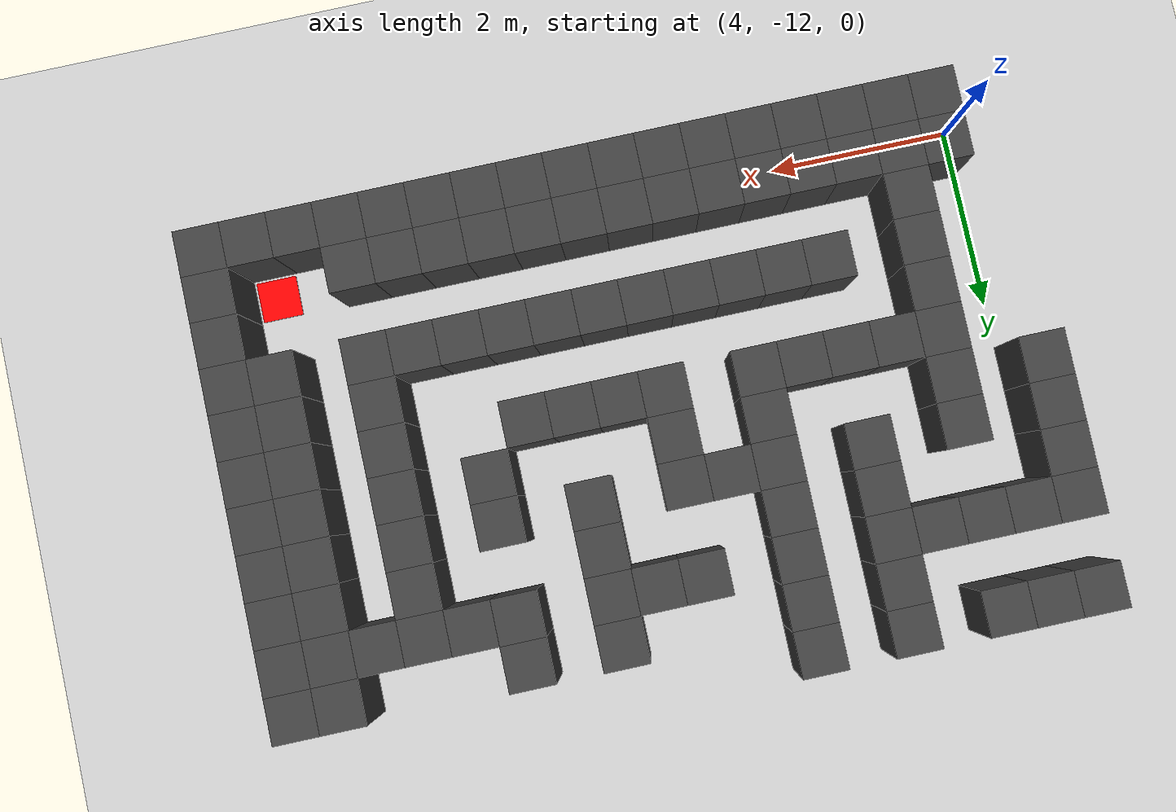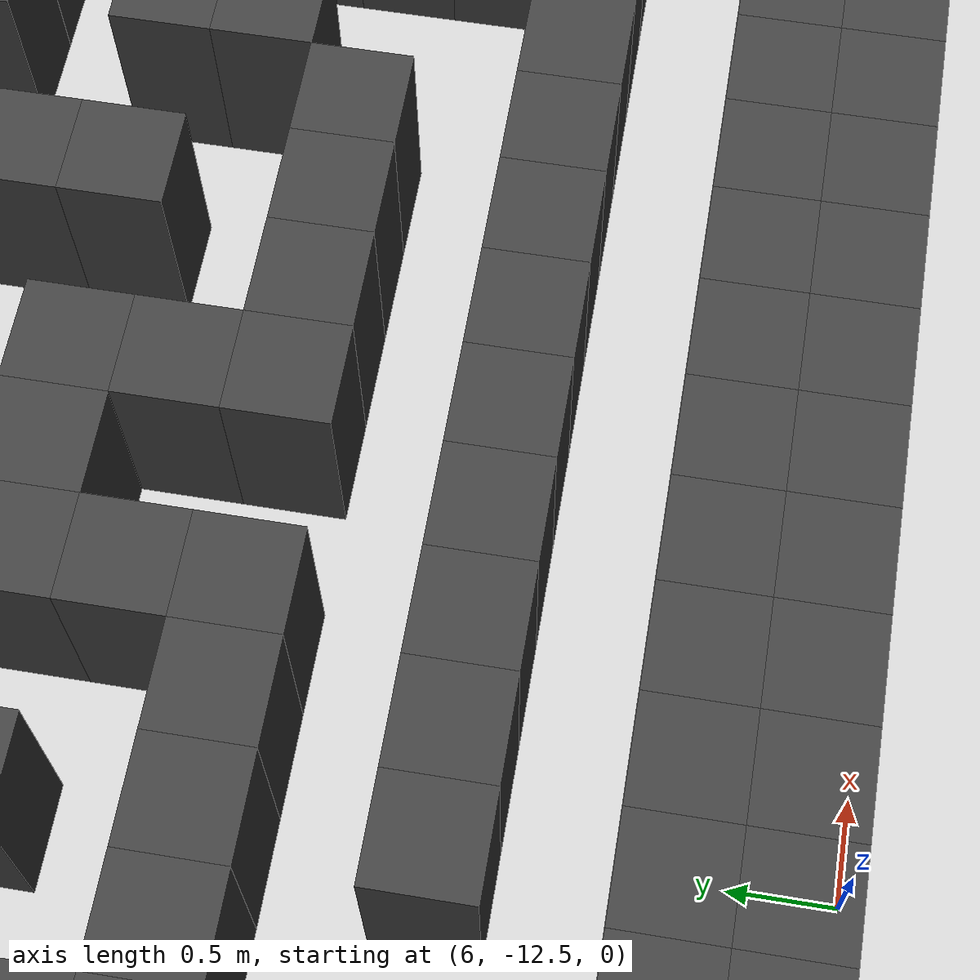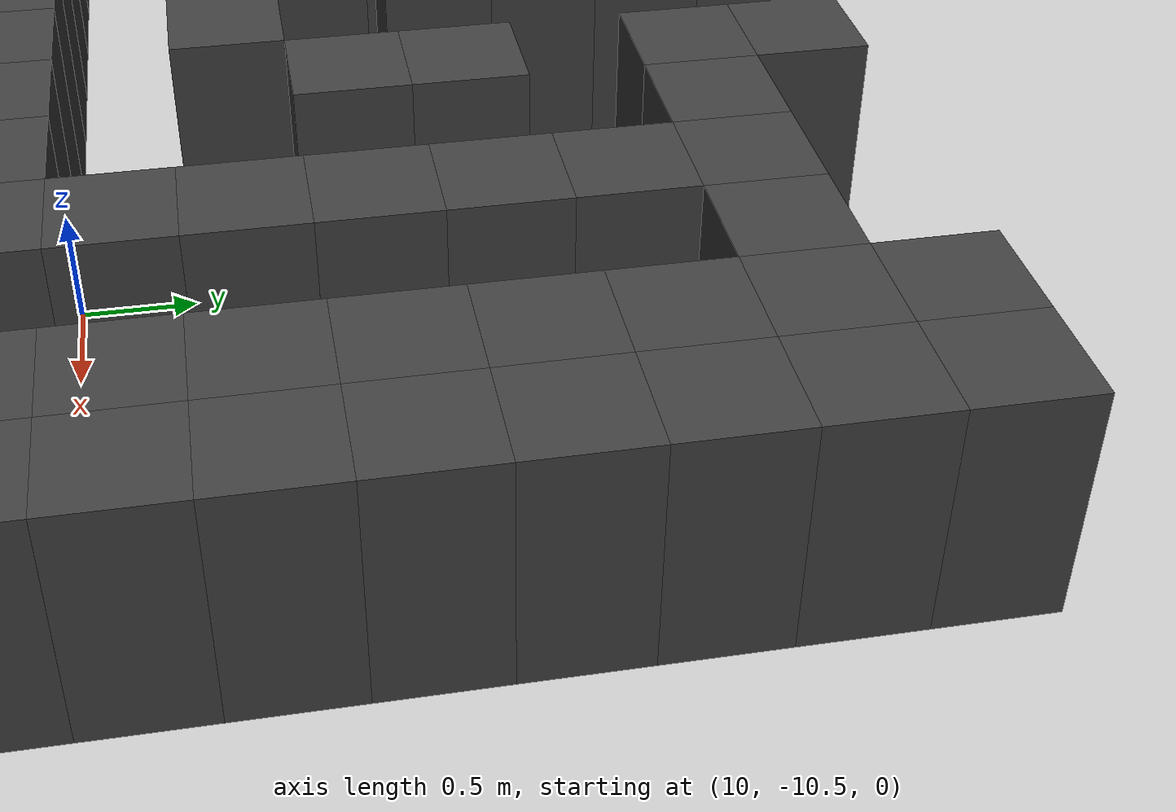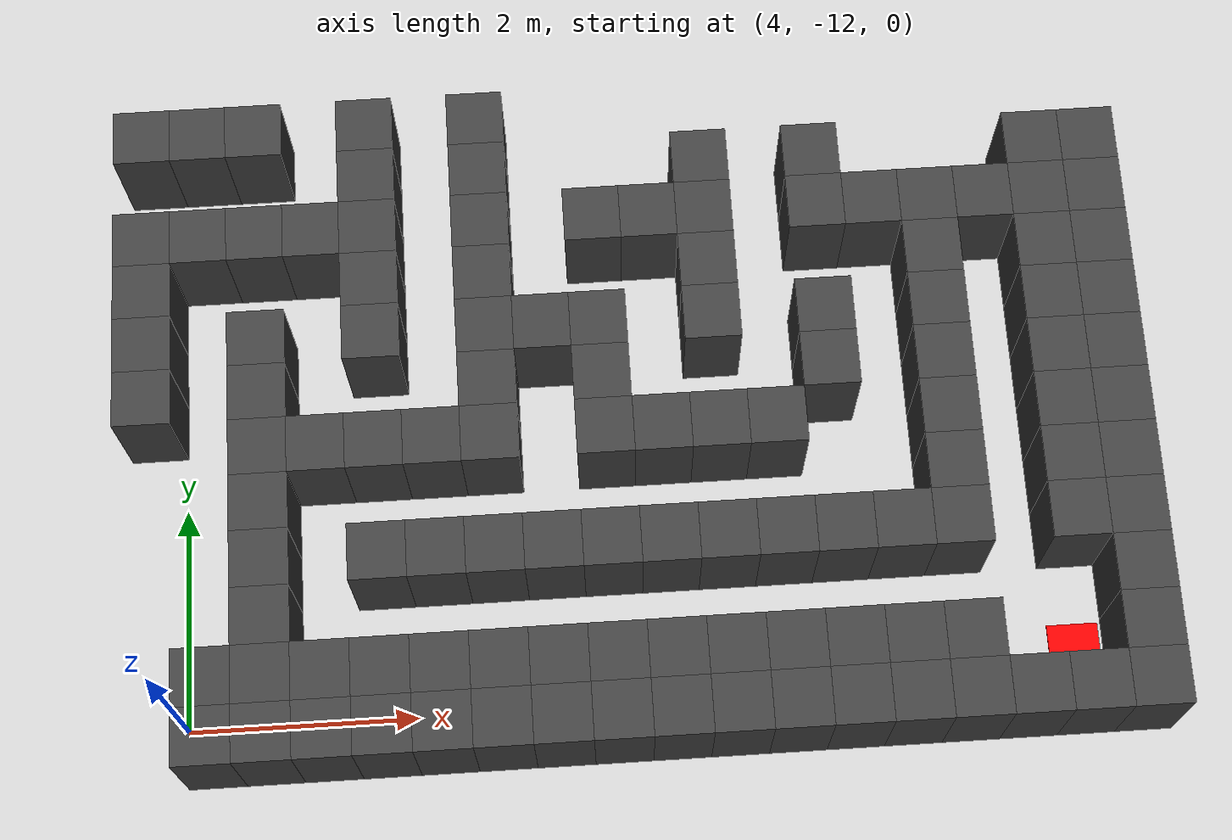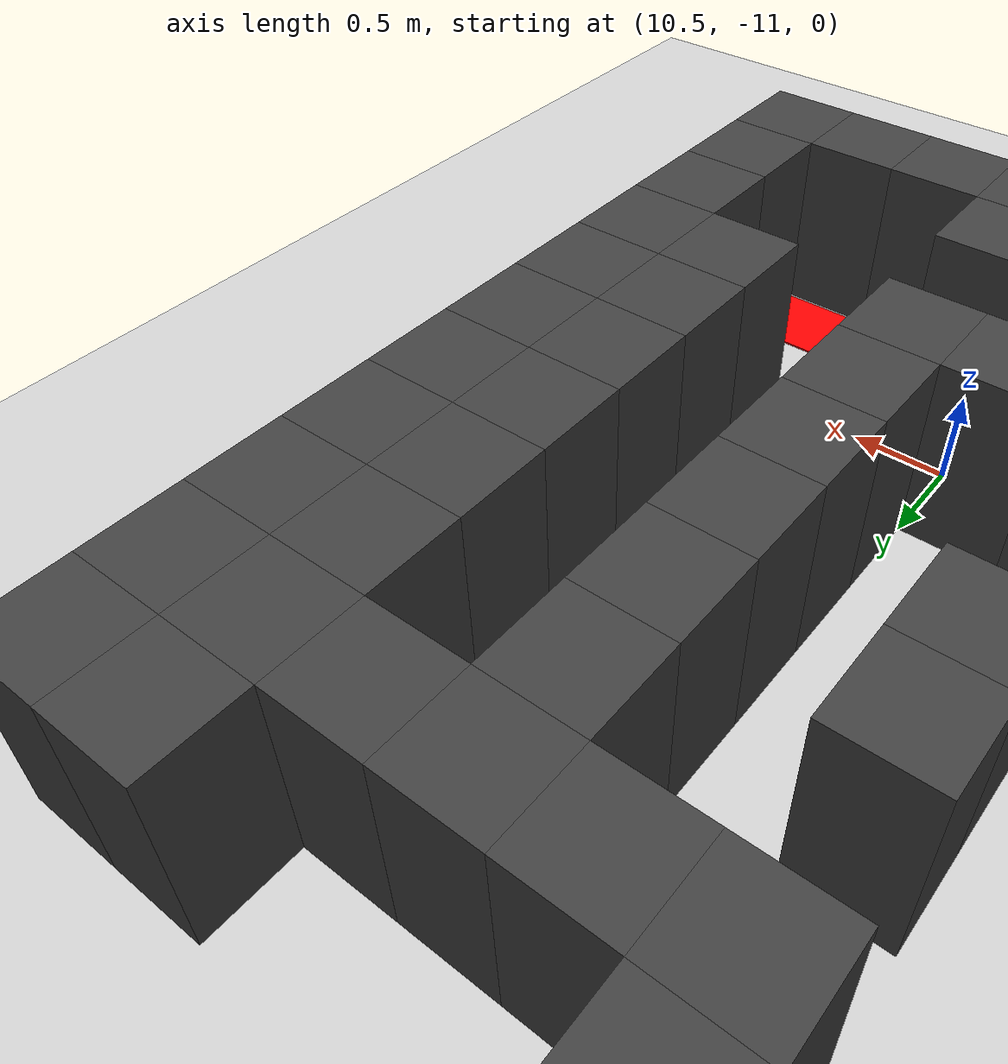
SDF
<sdf version="1.7">
 <world name="map_18347">
  <model name="ground_plane">
   <static>true</static>
   <link name="link">
    <collision name="collision">
     <geometry><plane><normal>0 0 1</normal><size>200 200</size></plane></geometry>
    </collision>
    <visual name="visual">
     <geometry><plane><normal>0 0 1</normal><size>200 200</size></plane></geometry>
     <material><ambient>0.8 0.8 0.8 1</ambient><diffuse>0.8 0.8 0.8 1</diffuse></material>
    </visual>
   </link>
  </model>
  <model name="maze_environment">
   <static>true</static>
   <link name="wall_974">
    <pose>3.750 -6.750 0.500 0 0 0</pose>
    <collision name="col"><geometry><box><size>0.5 0.5 1.0</size></box></geometry></collision>
    <visual name="vis">
     <geometry><box><size>0.5 0.5 1.0</size></box></geometry>
     <material><ambient>0.15 0.15 0.15 1</ambient><diffuse>0.25 0.25 0.25 1</diffuse></material>
    </visual>
   </link>
   <link name="wall_975">
    <pose>4.250 -6.750 0.500 0 0 0</pose>
    <collision name="col"><geometry><box><size>0.5 0.5 1.0</size></box></geometry></collision>
    <visual name="vis">
     <geometry><box><size>0.5 0.5 1.0</size></box></geometry>
     <material><ambient>0.15 0.15 0.15 1</ambient><diffuse>0.25 0.25 0.25 1</diffuse></material>
    </visual>
   </link>
   <link name="wall_976">
    <pose>4.750 -6.750 0.500 0 0 0</pose>
    <collision name="col"><geometry><box><size>0.5 0.5 1.0</size></box></geometry></collision>
    <visual name="vis">
     <geometry><box><size>0.5 0.5 1.0</size></box></geometry>
     <material><ambient>0.15 0.15 0.15 1</ambient><diffuse>0.25 0.25 0.25 1</diffuse></material>
    </visual>
   </link>
   <link name="wall_977">
    <pose>5.750 -6.750 0.500 0 0 0</pose>
    <collision name="col"><geometry><box><size>0.5 0.5 1.0</size></box></geometry></collision>
    <visual name="vis">
     <geometry><box><size>0.5 0.5 1.0</size></box></geometry>
     <material><ambient>0.15 0.15 0.15 1</ambient><diffuse>0.25 0.25 0.25 1</diffuse></material>
    </visual>
   </link>
   <link name="wall_978">
    <pose>6.750 -6.750 0.500 0 0 0</pose>
    <collision name="col"><geometry><box><size>0.5 0.5 1.0</size></box></geometry></collision>
    <visual name="vis">
     <geometry><box><size>0.5 0.5 1.0</size></box></geometry>
     <material><ambient>0.15 0.15 0.15 1</ambient><diffuse>0.25 0.25 0.25 1</diffuse></material>
    </visual>
   </link>
   <link name="wall_995">
    <pose>5.750 -7.250 0.500 0 0 0</pose>
    <collision name="col"><geometry><box><size>0.5 0.5 1.0</size></box></geometry></collision>
    <visual name="vis">
     <geometry><box><size>0.5 0.5 1.0</size></box></geometry>
     <material><ambient>0.15 0.15 0.15 1</ambient><diffuse>0.25 0.25 0.25 1</diffuse></material>
    </visual>
   </link>
   <link name="wall_996">
    <pose>6.750 -7.250 0.500 0 0 0</pose>
    <collision name="col"><geometry><box><size>0.5 0.5 1.0</size></box></geometry></collision>
    <visual name="vis">
     <geometry><box><size>0.5 0.5 1.0</size></box></geometry>
     <material><ambient>0.15 0.15 0.15 1</ambient><diffuse>0.25 0.25 0.25 1</diffuse></material>
    </visual>
   </link>
   <link name="wall_997">
    <pose>8.750 -7.250 0.500 0 0 0</pose>
    <collision name="col"><geometry><box><size>0.5 0.5 1.0</size></box></geometry></collision>
    <visual name="vis">
     <geometry><box><size>0.5 0.5 1.0</size></box></geometry>
     <material><ambient>0.15 0.15 0.15 1</ambient><diffuse>0.25 0.25 0.25 1</diffuse></material>
    </visual>
   </link>
   <link name="wall_998">
    <pose>9.750 -7.250 0.500 0 0 0</pose>
    <collision name="col"><geometry><box><size>0.5 0.5 1.0</size></box></geometry></collision>
    <visual name="vis">
     <geometry><box><size>0.5 0.5 1.0</size></box></geometry>
     <material><ambient>0.15 0.15 0.15 1</ambient><diffuse>0.25 0.25 0.25 1</diffuse></material>
    </visual>
   </link>
   <link name="wall_999">
    <pose>11.750 -7.250 0.500 0 0 0</pose>
    <collision name="col"><geometry><box><size>0.5 0.5 1.0</size></box></geometry></collision>
    <visual name="vis">
     <geometry><box><size>0.5 0.5 1.0</size></box></geometry>
     <material><ambient>0.15 0.15 0.15 1</ambient><diffuse>0.25 0.25 0.25 1</diffuse></material>
    </visual>
   </link>
   <link name="wall_1000">
    <pose>12.250 -7.250 0.500 0 0 0</pose>
    <collision name="col"><geometry><box><size>0.5 0.5 1.0</size></box></geometry></collision>
    <visual name="vis">
     <geometry><box><size>0.5 0.5 1.0</size></box></geometry>
     <material><ambient>0.15 0.15 0.15 1</ambient><diffuse>0.25 0.25 0.25 1</diffuse></material>
    </visual>
   </link>
   <link name="wall_1023">
    <pose>3.750 -7.750 0.500 0 0 0</pose>
    <collision name="col"><geometry><box><size>0.5 0.5 1.0</size></box></geometry></collision>
    <visual name="vis">
     <geometry><box><size>0.5 0.5 1.0</size></box></geometry>
     <material><ambient>0.15 0.15 0.15 1</ambient><diffuse>0.25 0.25 0.25 1</diffuse></material>
    </visual>
   </link>
   <link name="wall_1024">
    <pose>4.250 -7.750 0.500 0 0 0</pose>
    <collision name="col"><geometry><box><size>0.5 0.5 1.0</size></box></geometry></collision>
    <visual name="vis">
     <geometry><box><size>0.5 0.5 1.0</size></box></geometry>
     <material><ambient>0.15 0.15 0.15 1</ambient><diffuse>0.25 0.25 0.25 1</diffuse></material>
    </visual>
   </link>
   <link name="wall_1025">
    <pose>4.750 -7.750 0.500 0 0 0</pose>
    <collision name="col"><geometry><box><size>0.5 0.5 1.0</size></box></geometry></collision>
    <visual name="vis">
     <geometry><box><size>0.5 0.5 1.0</size></box></geometry>
     <material><ambient>0.15 0.15 0.15 1</ambient><diffuse>0.25 0.25 0.25 1</diffuse></material>
    </visual>
   </link>
   <link name="wall_1026">
    <pose>5.250 -7.750 0.500 0 0 0</pose>
    <collision name="col"><geometry><box><size>0.5 0.5 1.0</size></box></geometry></collision>
    <visual name="vis">
     <geometry><box><size>0.5 0.5 1.0</size></box></geometry>
     <material><ambient>0.15 0.15 0.15 1</ambient><diffuse>0.25 0.25 0.25 1</diffuse></material>
    </visual>
   </link>
   <link name="wall_1027">
    <pose>5.750 -7.750 0.500 0 0 0</pose>
    <collision name="col"><geometry><box><size>0.5 0.5 1.0</size></box></geometry></collision>
    <visual name="vis">
     <geometry><box><size>0.5 0.5 1.0</size></box></geometry>
     <material><ambient>0.15 0.15 0.15 1</ambient><diffuse>0.25 0.25 0.25 1</diffuse></material>
    </visual>
   </link>
   <link name="wall_1028">
    <pose>6.750 -7.750 0.500 0 0 0</pose>
    <collision name="col"><geometry><box><size>0.5 0.5 1.0</size></box></geometry></collision>
    <visual name="vis">
     <geometry><box><size>0.5 0.5 1.0</size></box></geometry>
     <material><ambient>0.15 0.15 0.15 1</ambient><diffuse>0.25 0.25 0.25 1</diffuse></material>
    </visual>
   </link>
   <link name="wall_1029">
    <pose>7.750 -7.750 0.500 0 0 0</pose>
    <collision name="col"><geometry><box><size>0.5 0.5 1.0</size></box></geometry></collision>
    <visual name="vis">
     <geometry><box><size>0.5 0.5 1.0</size></box></geometry>
     <material><ambient>0.15 0.15 0.15 1</ambient><diffuse>0.25 0.25 0.25 1</diffuse></material>
    </visual>
   </link>
   <link name="wall_1030">
    <pose>8.250 -7.750 0.500 0 0 0</pose>
    <collision name="col"><geometry><box><size>0.5 0.5 1.0</size></box></geometry></collision>
    <visual name="vis">
     <geometry><box><size>0.5 0.5 1.0</size></box></geometry>
     <material><ambient>0.15 0.15 0.15 1</ambient><diffuse>0.25 0.25 0.25 1</diffuse></material>
    </visual>
   </link>
   <link name="wall_1031">
    <pose>8.750 -7.750 0.500 0 0 0</pose>
    <collision name="col"><geometry><box><size>0.5 0.5 1.0</size></box></geometry></collision>
    <visual name="vis">
     <geometry><box><size>0.5 0.5 1.0</size></box></geometry>
     <material><ambient>0.15 0.15 0.15 1</ambient><diffuse>0.25 0.25 0.25 1</diffuse></material>
    </visual>
   </link>
   <link name="wall_1032">
    <pose>9.750 -7.750 0.500 0 0 0</pose>
    <collision name="col"><geometry><box><size>0.5 0.5 1.0</size></box></geometry></collision>
    <visual name="vis">
     <geometry><box><size>0.5 0.5 1.0</size></box></geometry>
     <material><ambient>0.15 0.15 0.15 1</ambient><diffuse>0.25 0.25 0.25 1</diffuse></material>
    </visual>
   </link>
   <link name="wall_1033">
    <pose>10.250 -7.750 0.500 0 0 0</pose>
    <collision name="col"><geometry><box><size>0.5 0.5 1.0</size></box></geometry></collision>
    <visual name="vis">
     <geometry><box><size>0.5 0.5 1.0</size></box></geometry>
     <material><ambient>0.15 0.15 0.15 1</ambient><diffuse>0.25 0.25 0.25 1</diffuse></material>
    </visual>
   </link>
   <link name="wall_1034">
    <pose>10.750 -7.750 0.500 0 0 0</pose>
    <collision name="col"><geometry><box><size>0.5 0.5 1.0</size></box></geometry></collision>
    <visual name="vis">
     <geometry><box><size>0.5 0.5 1.0</size></box></geometry>
     <material><ambient>0.15 0.15 0.15 1</ambient><diffuse>0.25 0.25 0.25 1</diffuse></material>
    </visual>
   </link>
   <link name="wall_1035">
    <pose>11.250 -7.750 0.500 0 0 0</pose>
    <collision name="col"><geometry><box><size>0.5 0.5 1.0</size></box></geometry></collision>
    <visual name="vis">
     <geometry><box><size>0.5 0.5 1.0</size></box></geometry>
     <material><ambient>0.15 0.15 0.15 1</ambient><diffuse>0.25 0.25 0.25 1</diffuse></material>
    </visual>
   </link>
   <link name="wall_1036">
    <pose>11.750 -7.750 0.500 0 0 0</pose>
    <collision name="col"><geometry><box><size>0.5 0.5 1.0</size></box></geometry></collision>
    <visual name="vis">
     <geometry><box><size>0.5 0.5 1.0</size></box></geometry>
     <material><ambient>0.15 0.15 0.15 1</ambient><diffuse>0.25 0.25 0.25 1</diffuse></material>
    </visual>
   </link>
   <link name="wall_1037">
    <pose>12.250 -7.750 0.500 0 0 0</pose>
    <collision name="col"><geometry><box><size>0.5 0.5 1.0</size></box></geometry></collision>
    <visual name="vis">
     <geometry><box><size>0.5 0.5 1.0</size></box></geometry>
     <material><ambient>0.15 0.15 0.15 1</ambient><diffuse>0.25 0.25 0.25 1</diffuse></material>
    </visual>
   </link>
   <link name="wall_1046">
    <pose>3.750 -8.250 0.500 0 0 0</pose>
    <collision name="col"><geometry><box><size>0.5 0.5 1.0</size></box></geometry></collision>
    <visual name="vis">
     <geometry><box><size>0.5 0.5 1.0</size></box></geometry>
     <material><ambient>0.15 0.15 0.15 1</ambient><diffuse>0.25 0.25 0.25 1</diffuse></material>
    </visual>
   </link>
   <link name="wall_1047">
    <pose>5.750 -8.250 0.500 0 0 0</pose>
    <collision name="col"><geometry><box><size>0.5 0.5 1.0</size></box></geometry></collision>
    <visual name="vis">
     <geometry><box><size>0.5 0.5 1.0</size></box></geometry>
     <material><ambient>0.15 0.15 0.15 1</ambient><diffuse>0.25 0.25 0.25 1</diffuse></material>
    </visual>
   </link>
   <link name="wall_1048">
    <pose>6.750 -8.250 0.500 0 0 0</pose>
    <collision name="col"><geometry><box><size>0.5 0.5 1.0</size></box></geometry></collision>
    <visual name="vis">
     <geometry><box><size>0.5 0.5 1.0</size></box></geometry>
     <material><ambient>0.15 0.15 0.15 1</ambient><diffuse>0.25 0.25 0.25 1</diffuse></material>
    </visual>
   </link>
   <link name="wall_1049">
    <pose>8.750 -8.250 0.500 0 0 0</pose>
    <collision name="col"><geometry><box><size>0.5 0.5 1.0</size></box></geometry></collision>
    <visual name="vis">
     <geometry><box><size>0.5 0.5 1.0</size></box></geometry>
     <material><ambient>0.15 0.15 0.15 1</ambient><diffuse>0.25 0.25 0.25 1</diffuse></material>
    </visual>
   </link>
   <link name="wall_1050">
    <pose>10.750 -8.250 0.500 0 0 0</pose>
    <collision name="col"><geometry><box><size>0.5 0.5 1.0</size></box></geometry></collision>
    <visual name="vis">
     <geometry><box><size>0.5 0.5 1.0</size></box></geometry>
     <material><ambient>0.15 0.15 0.15 1</ambient><diffuse>0.25 0.25 0.25 1</diffuse></material>
    </visual>
   </link>
   <link name="wall_1051">
    <pose>11.750 -8.250 0.500 0 0 0</pose>
    <collision name="col"><geometry><box><size>0.5 0.5 1.0</size></box></geometry></collision>
    <visual name="vis">
     <geometry><box><size>0.5 0.5 1.0</size></box></geometry>
     <material><ambient>0.15 0.15 0.15 1</ambient><diffuse>0.25 0.25 0.25 1</diffuse></material>
    </visual>
   </link>
   <link name="wall_1052">
    <pose>12.250 -8.250 0.500 0 0 0</pose>
    <collision name="col"><geometry><box><size>0.5 0.5 1.0</size></box></geometry></collision>
    <visual name="vis">
     <geometry><box><size>0.5 0.5 1.0</size></box></geometry>
     <material><ambient>0.15 0.15 0.15 1</ambient><diffuse>0.25 0.25 0.25 1</diffuse></material>
    </visual>
   </link>
   <link name="wall_1074">
    <pose>3.750 -8.750 0.500 0 0 0</pose>
    <collision name="col"><geometry><box><size>0.5 0.5 1.0</size></box></geometry></collision>
    <visual name="vis">
     <geometry><box><size>0.5 0.5 1.0</size></box></geometry>
     <material><ambient>0.15 0.15 0.15 1</ambient><diffuse>0.25 0.25 0.25 1</diffuse></material>
    </visual>
   </link>
   <link name="wall_1075">
    <pose>4.750 -8.750 0.500 0 0 0</pose>
    <collision name="col"><geometry><box><size>0.5 0.5 1.0</size></box></geometry></collision>
    <visual name="vis">
     <geometry><box><size>0.5 0.5 1.0</size></box></geometry>
     <material><ambient>0.15 0.15 0.15 1</ambient><diffuse>0.25 0.25 0.25 1</diffuse></material>
    </visual>
   </link>
   <link name="wall_1076">
    <pose>5.750 -8.750 0.500 0 0 0</pose>
    <collision name="col"><geometry><box><size>0.5 0.5 1.0</size></box></geometry></collision>
    <visual name="vis">
     <geometry><box><size>0.5 0.5 1.0</size></box></geometry>
     <material><ambient>0.15 0.15 0.15 1</ambient><diffuse>0.25 0.25 0.25 1</diffuse></material>
    </visual>
   </link>
   <link name="wall_1077">
    <pose>6.750 -8.750 0.500 0 0 0</pose>
    <collision name="col"><geometry><box><size>0.5 0.5 1.0</size></box></geometry></collision>
    <visual name="vis">
     <geometry><box><size>0.5 0.5 1.0</size></box></geometry>
     <material><ambient>0.15 0.15 0.15 1</ambient><diffuse>0.25 0.25 0.25 1</diffuse></material>
    </visual>
   </link>
   <link name="wall_1078">
    <pose>7.250 -8.750 0.500 0 0 0</pose>
    <collision name="col"><geometry><box><size>0.5 0.5 1.0</size></box></geometry></collision>
    <visual name="vis">
     <geometry><box><size>0.5 0.5 1.0</size></box></geometry>
     <material><ambient>0.15 0.15 0.15 1</ambient><diffuse>0.25 0.25 0.25 1</diffuse></material>
    </visual>
   </link>
   <link name="wall_1079">
    <pose>7.750 -8.750 0.500 0 0 0</pose>
    <collision name="col"><geometry><box><size>0.5 0.5 1.0</size></box></geometry></collision>
    <visual name="vis">
     <geometry><box><size>0.5 0.5 1.0</size></box></geometry>
     <material><ambient>0.15 0.15 0.15 1</ambient><diffuse>0.25 0.25 0.25 1</diffuse></material>
    </visual>
   </link>
   <link name="wall_1080">
    <pose>8.750 -8.750 0.500 0 0 0</pose>
    <collision name="col"><geometry><box><size>0.5 0.5 1.0</size></box></geometry></collision>
    <visual name="vis">
     <geometry><box><size>0.5 0.5 1.0</size></box></geometry>
     <material><ambient>0.15 0.15 0.15 1</ambient><diffuse>0.25 0.25 0.25 1</diffuse></material>
    </visual>
   </link>
   <link name="wall_1081">
    <pose>9.750 -8.750 0.500 0 0 0</pose>
    <collision name="col"><geometry><box><size>0.5 0.5 1.0</size></box></geometry></collision>
    <visual name="vis">
     <geometry><box><size>0.5 0.5 1.0</size></box></geometry>
     <material><ambient>0.15 0.15 0.15 1</ambient><diffuse>0.25 0.25 0.25 1</diffuse></material>
    </visual>
   </link>
   <link name="wall_1082">
    <pose>10.750 -8.750 0.500 0 0 0</pose>
    <collision name="col"><geometry><box><size>0.5 0.5 1.0</size></box></geometry></collision>
    <visual name="vis">
     <geometry><box><size>0.5 0.5 1.0</size></box></geometry>
     <material><ambient>0.15 0.15 0.15 1</ambient><diffuse>0.25 0.25 0.25 1</diffuse></material>
    </visual>
   </link>
   <link name="wall_1083">
    <pose>11.750 -8.750 0.500 0 0 0</pose>
    <collision name="col"><geometry><box><size>0.5 0.5 1.0</size></box></geometry></collision>
    <visual name="vis">
     <geometry><box><size>0.5 0.5 1.0</size></box></geometry>
     <material><ambient>0.15 0.15 0.15 1</ambient><diffuse>0.25 0.25 0.25 1</diffuse></material>
    </visual>
   </link>
   <link name="wall_1084">
    <pose>12.250 -8.750 0.500 0 0 0</pose>
    <collision name="col"><geometry><box><size>0.5 0.5 1.0</size></box></geometry></collision>
    <visual name="vis">
     <geometry><box><size>0.5 0.5 1.0</size></box></geometry>
     <material><ambient>0.15 0.15 0.15 1</ambient><diffuse>0.25 0.25 0.25 1</diffuse></material>
    </visual>
   </link>
   <link name="wall_1095">
    <pose>3.750 -9.250 0.500 0 0 0</pose>
    <collision name="col"><geometry><box><size>0.5 0.5 1.0</size></box></geometry></collision>
    <visual name="vis">
     <geometry><box><size>0.5 0.5 1.0</size></box></geometry>
     <material><ambient>0.15 0.15 0.15 1</ambient><diffuse>0.25 0.25 0.25 1</diffuse></material>
    </visual>
   </link>
   <link name="wall_1096">
    <pose>4.750 -9.250 0.500 0 0 0</pose>
    <collision name="col"><geometry><box><size>0.5 0.5 1.0</size></box></geometry></collision>
    <visual name="vis">
     <geometry><box><size>0.5 0.5 1.0</size></box></geometry>
     <material><ambient>0.15 0.15 0.15 1</ambient><diffuse>0.25 0.25 0.25 1</diffuse></material>
    </visual>
   </link>
   <link name="wall_1097">
    <pose>6.750 -9.250 0.500 0 0 0</pose>
    <collision name="col"><geometry><box><size>0.5 0.5 1.0</size></box></geometry></collision>
    <visual name="vis">
     <geometry><box><size>0.5 0.5 1.0</size></box></geometry>
     <material><ambient>0.15 0.15 0.15 1</ambient><diffuse>0.25 0.25 0.25 1</diffuse></material>
    </visual>
   </link>
   <link name="wall_1098">
    <pose>7.750 -9.250 0.500 0 0 0</pose>
    <collision name="col"><geometry><box><size>0.5 0.5 1.0</size></box></geometry></collision>
    <visual name="vis">
     <geometry><box><size>0.5 0.5 1.0</size></box></geometry>
     <material><ambient>0.15 0.15 0.15 1</ambient><diffuse>0.25 0.25 0.25 1</diffuse></material>
    </visual>
   </link>
   <link name="wall_1099">
    <pose>9.750 -9.250 0.500 0 0 0</pose>
    <collision name="col"><geometry><box><size>0.5 0.5 1.0</size></box></geometry></collision>
    <visual name="vis">
     <geometry><box><size>0.5 0.5 1.0</size></box></geometry>
     <material><ambient>0.15 0.15 0.15 1</ambient><diffuse>0.25 0.25 0.25 1</diffuse></material>
    </visual>
   </link>
   <link name="wall_1100">
    <pose>10.750 -9.250 0.500 0 0 0</pose>
    <collision name="col"><geometry><box><size>0.5 0.5 1.0</size></box></geometry></collision>
    <visual name="vis">
     <geometry><box><size>0.5 0.5 1.0</size></box></geometry>
     <material><ambient>0.15 0.15 0.15 1</ambient><diffuse>0.25 0.25 0.25 1</diffuse></material>
    </visual>
   </link>
   <link name="wall_1101">
    <pose>11.750 -9.250 0.500 0 0 0</pose>
    <collision name="col"><geometry><box><size>0.5 0.5 1.0</size></box></geometry></collision>
    <visual name="vis">
     <geometry><box><size>0.5 0.5 1.0</size></box></geometry>
     <material><ambient>0.15 0.15 0.15 1</ambient><diffuse>0.25 0.25 0.25 1</diffuse></material>
    </visual>
   </link>
   <link name="wall_1102">
    <pose>12.250 -9.250 0.500 0 0 0</pose>
    <collision name="col"><geometry><box><size>0.5 0.5 1.0</size></box></geometry></collision>
    <visual name="vis">
     <geometry><box><size>0.5 0.5 1.0</size></box></geometry>
     <material><ambient>0.15 0.15 0.15 1</ambient><diffuse>0.25 0.25 0.25 1</diffuse></material>
    </visual>
   </link>
   <link name="wall_1128">
    <pose>4.750 -9.750 0.500 0 0 0</pose>
    <collision name="col"><geometry><box><size>0.5 0.5 1.0</size></box></geometry></collision>
    <visual name="vis">
     <geometry><box><size>0.5 0.5 1.0</size></box></geometry>
     <material><ambient>0.15 0.15 0.15 1</ambient><diffuse>0.25 0.25 0.25 1</diffuse></material>
    </visual>
   </link>
   <link name="wall_1129">
    <pose>5.250 -9.750 0.500 0 0 0</pose>
    <collision name="col"><geometry><box><size>0.5 0.5 1.0</size></box></geometry></collision>
    <visual name="vis">
     <geometry><box><size>0.5 0.5 1.0</size></box></geometry>
     <material><ambient>0.15 0.15 0.15 1</ambient><diffuse>0.25 0.25 0.25 1</diffuse></material>
    </visual>
   </link>
   <link name="wall_1130">
    <pose>5.750 -9.750 0.500 0 0 0</pose>
    <collision name="col"><geometry><box><size>0.5 0.5 1.0</size></box></geometry></collision>
    <visual name="vis">
     <geometry><box><size>0.5 0.5 1.0</size></box></geometry>
     <material><ambient>0.15 0.15 0.15 1</ambient><diffuse>0.25 0.25 0.25 1</diffuse></material>
    </visual>
   </link>
   <link name="wall_1131">
    <pose>6.250 -9.750 0.500 0 0 0</pose>
    <collision name="col"><geometry><box><size>0.5 0.5 1.0</size></box></geometry></collision>
    <visual name="vis">
     <geometry><box><size>0.5 0.5 1.0</size></box></geometry>
     <material><ambient>0.15 0.15 0.15 1</ambient><diffuse>0.25 0.25 0.25 1</diffuse></material>
    </visual>
   </link>
   <link name="wall_1132">
    <pose>6.750 -9.750 0.500 0 0 0</pose>
    <collision name="col"><geometry><box><size>0.5 0.5 1.0</size></box></geometry></collision>
    <visual name="vis">
     <geometry><box><size>0.5 0.5 1.0</size></box></geometry>
     <material><ambient>0.15 0.15 0.15 1</ambient><diffuse>0.25 0.25 0.25 1</diffuse></material>
    </visual>
   </link>
   <link name="wall_1133">
    <pose>7.750 -9.750 0.500 0 0 0</pose>
    <collision name="col"><geometry><box><size>0.5 0.5 1.0</size></box></geometry></collision>
    <visual name="vis">
     <geometry><box><size>0.5 0.5 1.0</size></box></geometry>
     <material><ambient>0.15 0.15 0.15 1</ambient><diffuse>0.25 0.25 0.25 1</diffuse></material>
    </visual>
   </link>
   <link name="wall_1134">
    <pose>8.250 -9.750 0.500 0 0 0</pose>
    <collision name="col"><geometry><box><size>0.5 0.5 1.0</size></box></geometry></collision>
    <visual name="vis">
     <geometry><box><size>0.5 0.5 1.0</size></box></geometry>
     <material><ambient>0.15 0.15 0.15 1</ambient><diffuse>0.25 0.25 0.25 1</diffuse></material>
    </visual>
   </link>
   <link name="wall_1135">
    <pose>8.750 -9.750 0.500 0 0 0</pose>
    <collision name="col"><geometry><box><size>0.5 0.5 1.0</size></box></geometry></collision>
    <visual name="vis">
     <geometry><box><size>0.5 0.5 1.0</size></box></geometry>
     <material><ambient>0.15 0.15 0.15 1</ambient><diffuse>0.25 0.25 0.25 1</diffuse></material>
    </visual>
   </link>
   <link name="wall_1136">
    <pose>9.250 -9.750 0.500 0 0 0</pose>
    <collision name="col"><geometry><box><size>0.5 0.5 1.0</size></box></geometry></collision>
    <visual name="vis">
     <geometry><box><size>0.5 0.5 1.0</size></box></geometry>
     <material><ambient>0.15 0.15 0.15 1</ambient><diffuse>0.25 0.25 0.25 1</diffuse></material>
    </visual>
   </link>
   <link name="wall_1137">
    <pose>10.750 -9.750 0.500 0 0 0</pose>
    <collision name="col"><geometry><box><size>0.5 0.5 1.0</size></box></geometry></collision>
    <visual name="vis">
     <geometry><box><size>0.5 0.5 1.0</size></box></geometry>
     <material><ambient>0.15 0.15 0.15 1</ambient><diffuse>0.25 0.25 0.25 1</diffuse></material>
    </visual>
   </link>
   <link name="wall_1138">
    <pose>11.750 -9.750 0.500 0 0 0</pose>
    <collision name="col"><geometry><box><size>0.5 0.5 1.0</size></box></geometry></collision>
    <visual name="vis">
     <geometry><box><size>0.5 0.5 1.0</size></box></geometry>
     <material><ambient>0.15 0.15 0.15 1</ambient><diffuse>0.25 0.25 0.25 1</diffuse></material>
    </visual>
   </link>
   <link name="wall_1139">
    <pose>12.250 -9.750 0.500 0 0 0</pose>
    <collision name="col"><geometry><box><size>0.5 0.5 1.0</size></box></geometry></collision>
    <visual name="vis">
     <geometry><box><size>0.5 0.5 1.0</size></box></geometry>
     <material><ambient>0.15 0.15 0.15 1</ambient><diffuse>0.25 0.25 0.25 1</diffuse></material>
    </visual>
   </link>
   <link name="wall_1147">
    <pose>4.750 -10.250 0.500 0 0 0</pose>
    <collision name="col"><geometry><box><size>0.5 0.5 1.0</size></box></geometry></collision>
    <visual name="vis">
     <geometry><box><size>0.5 0.5 1.0</size></box></geometry>
     <material><ambient>0.15 0.15 0.15 1</ambient><diffuse>0.25 0.25 0.25 1</diffuse></material>
    </visual>
   </link>
   <link name="wall_1148">
    <pose>10.750 -10.250 0.500 0 0 0</pose>
    <collision name="col"><geometry><box><size>0.5 0.5 1.0</size></box></geometry></collision>
    <visual name="vis">
     <geometry><box><size>0.5 0.5 1.0</size></box></geometry>
     <material><ambient>0.15 0.15 0.15 1</ambient><diffuse>0.25 0.25 0.25 1</diffuse></material>
    </visual>
   </link>
   <link name="wall_1149">
    <pose>11.750 -10.250 0.500 0 0 0</pose>
    <collision name="col"><geometry><box><size>0.5 0.5 1.0</size></box></geometry></collision>
    <visual name="vis">
     <geometry><box><size>0.5 0.5 1.0</size></box></geometry>
     <material><ambient>0.15 0.15 0.15 1</ambient><diffuse>0.25 0.25 0.25 1</diffuse></material>
    </visual>
   </link>
   <link name="wall_1150">
    <pose>12.250 -10.250 0.500 0 0 0</pose>
    <collision name="col"><geometry><box><size>0.5 0.5 1.0</size></box></geometry></collision>
    <visual name="vis">
     <geometry><box><size>0.5 0.5 1.0</size></box></geometry>
     <material><ambient>0.15 0.15 0.15 1</ambient><diffuse>0.25 0.25 0.25 1</diffuse></material>
    </visual>
   </link>
   <link name="wall_1174">
    <pose>4.750 -10.750 0.500 0 0 0</pose>
    <collision name="col"><geometry><box><size>0.5 0.5 1.0</size></box></geometry></collision>
    <visual name="vis">
     <geometry><box><size>0.5 0.5 1.0</size></box></geometry>
     <material><ambient>0.15 0.15 0.15 1</ambient><diffuse>0.25 0.25 0.25 1</diffuse></material>
    </visual>
   </link>
   <link name="wall_1175">
    <pose>5.750 -10.750 0.500 0 0 0</pose>
    <collision name="col"><geometry><box><size>0.5 0.5 1.0</size></box></geometry></collision>
    <visual name="vis">
     <geometry><box><size>0.5 0.5 1.0</size></box></geometry>
     <material><ambient>0.15 0.15 0.15 1</ambient><diffuse>0.25 0.25 0.25 1</diffuse></material>
    </visual>
   </link>
   <link name="wall_1176">
    <pose>6.250 -10.750 0.500 0 0 0</pose>
    <collision name="col"><geometry><box><size>0.5 0.5 1.0</size></box></geometry></collision>
    <visual name="vis">
     <geometry><box><size>0.5 0.5 1.0</size></box></geometry>
     <material><ambient>0.15 0.15 0.15 1</ambient><diffuse>0.25 0.25 0.25 1</diffuse></material>
    </visual>
   </link>
   <link name="wall_1177">
    <pose>6.750 -10.750 0.500 0 0 0</pose>
    <collision name="col"><geometry><box><size>0.5 0.5 1.0</size></box></geometry></collision>
    <visual name="vis">
     <geometry><box><size>0.5 0.5 1.0</size></box></geometry>
     <material><ambient>0.15 0.15 0.15 1</ambient><diffuse>0.25 0.25 0.25 1</diffuse></material>
    </visual>
   </link>
   <link name="wall_1178">
    <pose>7.250 -10.750 0.500 0 0 0</pose>
    <collision name="col"><geometry><box><size>0.5 0.5 1.0</size></box></geometry></collision>
    <visual name="vis">
     <geometry><box><size>0.5 0.5 1.0</size></box></geometry>
     <material><ambient>0.15 0.15 0.15 1</ambient><diffuse>0.25 0.25 0.25 1</diffuse></material>
    </visual>
   </link>
   <link name="wall_1179">
    <pose>7.750 -10.750 0.500 0 0 0</pose>
    <collision name="col"><geometry><box><size>0.5 0.5 1.0</size></box></geometry></collision>
    <visual name="vis">
     <geometry><box><size>0.5 0.5 1.0</size></box></geometry>
     <material><ambient>0.15 0.15 0.15 1</ambient><diffuse>0.25 0.25 0.25 1</diffuse></material>
    </visual>
   </link>
   <link name="wall_1180">
    <pose>8.250 -10.750 0.500 0 0 0</pose>
    <collision name="col"><geometry><box><size>0.5 0.5 1.0</size></box></geometry></collision>
    <visual name="vis">
     <geometry><box><size>0.5 0.5 1.0</size></box></geometry>
     <material><ambient>0.15 0.15 0.15 1</ambient><diffuse>0.25 0.25 0.25 1</diffuse></material>
    </visual>
   </link>
   <link name="wall_1181">
    <pose>8.750 -10.750 0.500 0 0 0</pose>
    <collision name="col"><geometry><box><size>0.5 0.5 1.0</size></box></geometry></collision>
    <visual name="vis">
     <geometry><box><size>0.5 0.5 1.0</size></box></geometry>
     <material><ambient>0.15 0.15 0.15 1</ambient><diffuse>0.25 0.25 0.25 1</diffuse></material>
    </visual>
   </link>
   <link name="wall_1182">
    <pose>9.250 -10.750 0.500 0 0 0</pose>
    <collision name="col"><geometry><box><size>0.5 0.5 1.0</size></box></geometry></collision>
    <visual name="vis">
     <geometry><box><size>0.5 0.5 1.0</size></box></geometry>
     <material><ambient>0.15 0.15 0.15 1</ambient><diffuse>0.25 0.25 0.25 1</diffuse></material>
    </visual>
   </link>
   <link name="wall_1183">
    <pose>9.750 -10.750 0.500 0 0 0</pose>
    <collision name="col"><geometry><box><size>0.5 0.5 1.0</size></box></geometry></collision>
    <visual name="vis">
     <geometry><box><size>0.5 0.5 1.0</size></box></geometry>
     <material><ambient>0.15 0.15 0.15 1</ambient><diffuse>0.25 0.25 0.25 1</diffuse></material>
    </visual>
   </link>
   <link name="wall_1184">
    <pose>10.250 -10.750 0.500 0 0 0</pose>
    <collision name="col"><geometry><box><size>0.5 0.5 1.0</size></box></geometry></collision>
    <visual name="vis">
     <geometry><box><size>0.5 0.5 1.0</size></box></geometry>
     <material><ambient>0.15 0.15 0.15 1</ambient><diffuse>0.25 0.25 0.25 1</diffuse></material>
    </visual>
   </link>
   <link name="wall_1185">
    <pose>10.750 -10.750 0.500 0 0 0</pose>
    <collision name="col"><geometry><box><size>0.5 0.5 1.0</size></box></geometry></collision>
    <visual name="vis">
     <geometry><box><size>0.5 0.5 1.0</size></box></geometry>
     <material><ambient>0.15 0.15 0.15 1</ambient><diffuse>0.25 0.25 0.25 1</diffuse></material>
    </visual>
   </link>
   <link name="wall_1186">
    <pose>11.750 -10.750 0.500 0 0 0</pose>
    <collision name="col"><geometry><box><size>0.5 0.5 1.0</size></box></geometry></collision>
    <visual name="vis">
     <geometry><box><size>0.5 0.5 1.0</size></box></geometry>
     <material><ambient>0.15 0.15 0.15 1</ambient><diffuse>0.25 0.25 0.25 1</diffuse></material>
    </visual>
   </link>
   <link name="wall_1187">
    <pose>12.250 -10.750 0.500 0 0 0</pose>
    <collision name="col"><geometry><box><size>0.5 0.5 1.0</size></box></geometry></collision>
    <visual name="vis">
     <geometry><box><size>0.5 0.5 1.0</size></box></geometry>
     <material><ambient>0.15 0.15 0.15 1</ambient><diffuse>0.25 0.25 0.25 1</diffuse></material>
    </visual>
   </link>
   <link name="wall_1193">
    <pose>4.750 -11.250 0.500 0 0 0</pose>
    <collision name="col"><geometry><box><size>0.5 0.5 1.0</size></box></geometry></collision>
    <visual name="vis">
     <geometry><box><size>0.5 0.5 1.0</size></box></geometry>
     <material><ambient>0.15 0.15 0.15 1</ambient><diffuse>0.25 0.25 0.25 1</diffuse></material>
    </visual>
   </link>
   <link name="wall_1194">
    <pose>12.250 -11.250 0.500 0 0 0</pose>
    <collision name="col"><geometry><box><size>0.5 0.5 1.0</size></box></geometry></collision>
    <visual name="vis">
     <geometry><box><size>0.5 0.5 1.0</size></box></geometry>
     <material><ambient>0.15 0.15 0.15 1</ambient><diffuse>0.25 0.25 0.25 1</diffuse></material>
    </visual>
   </link>
   <link name="wall_1228">
    <pose>4.250 -11.750 0.500 0 0 0</pose>
    <collision name="col"><geometry><box><size>0.5 0.5 1.0</size></box></geometry></collision>
    <visual name="vis">
     <geometry><box><size>0.5 0.5 1.0</size></box></geometry>
     <material><ambient>0.15 0.15 0.15 1</ambient><diffuse>0.25 0.25 0.25 1</diffuse></material>
    </visual>
   </link>
   <link name="wall_1229">
    <pose>4.750 -11.750 0.500 0 0 0</pose>
    <collision name="col"><geometry><box><size>0.5 0.5 1.0</size></box></geometry></collision>
    <visual name="vis">
     <geometry><box><size>0.5 0.5 1.0</size></box></geometry>
     <material><ambient>0.15 0.15 0.15 1</ambient><diffuse>0.25 0.25 0.25 1</diffuse></material>
    </visual>
   </link>
   <link name="wall_1230">
    <pose>5.250 -11.750 0.500 0 0 0</pose>
    <collision name="col"><geometry><box><size>0.5 0.5 1.0</size></box></geometry></collision>
    <visual name="vis">
     <geometry><box><size>0.5 0.5 1.0</size></box></geometry>
     <material><ambient>0.15 0.15 0.15 1</ambient><diffuse>0.25 0.25 0.25 1</diffuse></material>
    </visual>
   </link>
   <link name="wall_1231">
    <pose>5.750 -11.750 0.500 0 0 0</pose>
    <collision name="col"><geometry><box><size>0.5 0.5 1.0</size></box></geometry></collision>
    <visual name="vis">
     <geometry><box><size>0.5 0.5 1.0</size></box></geometry>
     <material><ambient>0.15 0.15 0.15 1</ambient><diffuse>0.25 0.25 0.25 1</diffuse></material>
    </visual>
   </link>
   <link name="wall_1232">
    <pose>6.250 -11.750 0.500 0 0 0</pose>
    <collision name="col"><geometry><box><size>0.5 0.5 1.0</size></box></geometry></collision>
    <visual name="vis">
     <geometry><box><size>0.5 0.5 1.0</size></box></geometry>
     <material><ambient>0.15 0.15 0.15 1</ambient><diffuse>0.25 0.25 0.25 1</diffuse></material>
    </visual>
   </link>
   <link name="wall_1233">
    <pose>6.750 -11.750 0.500 0 0 0</pose>
    <collision name="col"><geometry><box><size>0.5 0.5 1.0</size></box></geometry></collision>
    <visual name="vis">
     <geometry><box><size>0.5 0.5 1.0</size></box></geometry>
     <material><ambient>0.15 0.15 0.15 1</ambient><diffuse>0.25 0.25 0.25 1</diffuse></material>
    </visual>
   </link>
   <link name="wall_1234">
    <pose>7.250 -11.750 0.500 0 0 0</pose>
    <collision name="col"><geometry><box><size>0.5 0.5 1.0</size></box></geometry></collision>
    <visual name="vis">
     <geometry><box><size>0.5 0.5 1.0</size></box></geometry>
     <material><ambient>0.15 0.15 0.15 1</ambient><diffuse>0.25 0.25 0.25 1</diffuse></material>
    </visual>
   </link>
   <link name="wall_1235">
    <pose>7.750 -11.750 0.500 0 0 0</pose>
    <collision name="col"><geometry><box><size>0.5 0.5 1.0</size></box></geometry></collision>
    <visual name="vis">
     <geometry><box><size>0.5 0.5 1.0</size></box></geometry>
     <material><ambient>0.15 0.15 0.15 1</ambient><diffuse>0.25 0.25 0.25 1</diffuse></material>
    </visual>
   </link>
   <link name="wall_1236">
    <pose>8.250 -11.750 0.500 0 0 0</pose>
    <collision name="col"><geometry><box><size>0.5 0.5 1.0</size></box></geometry></collision>
    <visual name="vis">
     <geometry><box><size>0.5 0.5 1.0</size></box></geometry>
     <material><ambient>0.15 0.15 0.15 1</ambient><diffuse>0.25 0.25 0.25 1</diffuse></material>
    </visual>
   </link>
   <link name="wall_1237">
    <pose>8.750 -11.750 0.500 0 0 0</pose>
    <collision name="col"><geometry><box><size>0.5 0.5 1.0</size></box></geometry></collision>
    <visual name="vis">
     <geometry><box><size>0.5 0.5 1.0</size></box></geometry>
     <material><ambient>0.15 0.15 0.15 1</ambient><diffuse>0.25 0.25 0.25 1</diffuse></material>
    </visual>
   </link>
   <link name="wall_1238">
    <pose>9.250 -11.750 0.500 0 0 0</pose>
    <collision name="col"><geometry><box><size>0.5 0.5 1.0</size></box></geometry></collision>
    <visual name="vis">
     <geometry><box><size>0.5 0.5 1.0</size></box></geometry>
     <material><ambient>0.15 0.15 0.15 1</ambient><diffuse>0.25 0.25 0.25 1</diffuse></material>
    </visual>
   </link>
   <link name="wall_1239">
    <pose>9.750 -11.750 0.500 0 0 0</pose>
    <collision name="col"><geometry><box><size>0.5 0.5 1.0</size></box></geometry></collision>
    <visual name="vis">
     <geometry><box><size>0.5 0.5 1.0</size></box></geometry>
     <material><ambient>0.15 0.15 0.15 1</ambient><diffuse>0.25 0.25 0.25 1</diffuse></material>
    </visual>
   </link>
   <link name="wall_1240">
    <pose>10.250 -11.750 0.500 0 0 0</pose>
    <collision name="col"><geometry><box><size>0.5 0.5 1.0</size></box></geometry></collision>
    <visual name="vis">
     <geometry><box><size>0.5 0.5 1.0</size></box></geometry>
     <material><ambient>0.15 0.15 0.15 1</ambient><diffuse>0.25 0.25 0.25 1</diffuse></material>
    </visual>
   </link>
   <link name="wall_1241">
    <pose>10.750 -11.750 0.500 0 0 0</pose>
    <collision name="col"><geometry><box><size>0.5 0.5 1.0</size></box></geometry></collision>
    <visual name="vis">
     <geometry><box><size>0.5 0.5 1.0</size></box></geometry>
     <material><ambient>0.15 0.15 0.15 1</ambient><diffuse>0.25 0.25 0.25 1</diffuse></material>
    </visual>
   </link>
   <link name="wall_1242">
    <pose>12.250 -11.750 0.500 0 0 0</pose>
    <collision name="col"><geometry><box><size>0.5 0.5 1.0</size></box></geometry></collision>
    <visual name="vis">
     <geometry><box><size>0.5 0.5 1.0</size></box></geometry>
     <material><ambient>0.15 0.15 0.15 1</ambient><diffuse>0.25 0.25 0.25 1</diffuse></material>
    </visual>
   </link>
   <link name="wall_1276">
    <pose>4.250 -12.250 0.500 0 0 0</pose>
    <collision name="col"><geometry><box><size>0.5 0.5 1.0</size></box></geometry></collision>
    <visual name="vis">
     <geometry><box><size>0.5 0.5 1.0</size></box></geometry>
     <material><ambient>0.15 0.15 0.15 1</ambient><diffuse>0.25 0.25 0.25 1</diffuse></material>
    </visual>
   </link>
   <link name="wall_1277">
    <pose>4.750 -12.250 0.500 0 0 0</pose>
    <collision name="col"><geometry><box><size>0.5 0.5 1.0</size></box></geometry></collision>
    <visual name="vis">
     <geometry><box><size>0.5 0.5 1.0</size></box></geometry>
     <material><ambient>0.15 0.15 0.15 1</ambient><diffuse>0.25 0.25 0.25 1</diffuse></material>
    </visual>
   </link>
   <link name="wall_1278">
    <pose>5.250 -12.250 0.500 0 0 0</pose>
    <collision name="col"><geometry><box><size>0.5 0.5 1.0</size></box></geometry></collision>
    <visual name="vis">
     <geometry><box><size>0.5 0.5 1.0</size></box></geometry>
     <material><ambient>0.15 0.15 0.15 1</ambient><diffuse>0.25 0.25 0.25 1</diffuse></material>
    </visual>
   </link>
   <link name="wall_1279">
    <pose>5.750 -12.250 0.500 0 0 0</pose>
    <collision name="col"><geometry><box><size>0.5 0.5 1.0</size></box></geometry></collision>
    <visual name="vis">
     <geometry><box><size>0.5 0.5 1.0</size></box></geometry>
     <material><ambient>0.15 0.15 0.15 1</ambient><diffuse>0.25 0.25 0.25 1</diffuse></material>
    </visual>
   </link>
   <link name="wall_1280">
    <pose>6.250 -12.250 0.500 0 0 0</pose>
    <collision name="col"><geometry><box><size>0.5 0.5 1.0</size></box></geometry></collision>
    <visual name="vis">
     <geometry><box><size>0.5 0.5 1.0</size></box></geometry>
     <material><ambient>0.15 0.15 0.15 1</ambient><diffuse>0.25 0.25 0.25 1</diffuse></material>
    </visual>
   </link>
   <link name="wall_1281">
    <pose>6.750 -12.250 0.500 0 0 0</pose>
    <collision name="col"><geometry><box><size>0.5 0.5 1.0</size></box></geometry></collision>
    <visual name="vis">
     <geometry><box><size>0.5 0.5 1.0</size></box></geometry>
     <material><ambient>0.15 0.15 0.15 1</ambient><diffuse>0.25 0.25 0.25 1</diffuse></material>
    </visual>
   </link>
   <link name="wall_1282">
    <pose>7.250 -12.250 0.500 0 0 0</pose>
    <collision name="col"><geometry><box><size>0.5 0.5 1.0</size></box></geometry></collision>
    <visual name="vis">
     <geometry><box><size>0.5 0.5 1.0</size></box></geometry>
     <material><ambient>0.15 0.15 0.15 1</ambient><diffuse>0.25 0.25 0.25 1</diffuse></material>
    </visual>
   </link>
   <link name="wall_1283">
    <pose>7.750 -12.250 0.500 0 0 0</pose>
    <collision name="col"><geometry><box><size>0.5 0.5 1.0</size></box></geometry></collision>
    <visual name="vis">
     <geometry><box><size>0.5 0.5 1.0</size></box></geometry>
     <material><ambient>0.15 0.15 0.15 1</ambient><diffuse>0.25 0.25 0.25 1</diffuse></material>
    </visual>
   </link>
   <link name="wall_1284">
    <pose>8.250 -12.250 0.500 0 0 0</pose>
    <collision name="col"><geometry><box><size>0.5 0.5 1.0</size></box></geometry></collision>
    <visual name="vis">
     <geometry><box><size>0.5 0.5 1.0</size></box></geometry>
     <material><ambient>0.15 0.15 0.15 1</ambient><diffuse>0.25 0.25 0.25 1</diffuse></material>
    </visual>
   </link>
   <link name="wall_1285">
    <pose>8.750 -12.250 0.500 0 0 0</pose>
    <collision name="col"><geometry><box><size>0.5 0.5 1.0</size></box></geometry></collision>
    <visual name="vis">
     <geometry><box><size>0.5 0.5 1.0</size></box></geometry>
     <material><ambient>0.15 0.15 0.15 1</ambient><diffuse>0.25 0.25 0.25 1</diffuse></material>
    </visual>
   </link>
   <link name="wall_1286">
    <pose>9.250 -12.250 0.500 0 0 0</pose>
    <collision name="col"><geometry><box><size>0.5 0.5 1.0</size></box></geometry></collision>
    <visual name="vis">
     <geometry><box><size>0.5 0.5 1.0</size></box></geometry>
     <material><ambient>0.15 0.15 0.15 1</ambient><diffuse>0.25 0.25 0.25 1</diffuse></material>
    </visual>
   </link>
   <link name="wall_1287">
    <pose>9.750 -12.250 0.500 0 0 0</pose>
    <collision name="col"><geometry><box><size>0.5 0.5 1.0</size></box></geometry></collision>
    <visual name="vis">
     <geometry><box><size>0.5 0.5 1.0</size></box></geometry>
     <material><ambient>0.15 0.15 0.15 1</ambient><diffuse>0.25 0.25 0.25 1</diffuse></material>
    </visual>
   </link>
   <link name="wall_1288">
    <pose>10.250 -12.250 0.500 0 0 0</pose>
    <collision name="col"><geometry><box><size>0.5 0.5 1.0</size></box></geometry></collision>
    <visual name="vis">
     <geometry><box><size>0.5 0.5 1.0</size></box></geometry>
     <material><ambient>0.15 0.15 0.15 1</ambient><diffuse>0.25 0.25 0.25 1</diffuse></material>
    </visual>
   </link>
   <link name="wall_1289">
    <pose>10.750 -12.250 0.500 0 0 0</pose>
    <collision name="col"><geometry><box><size>0.5 0.5 1.0</size></box></geometry></collision>
    <visual name="vis">
     <geometry><box><size>0.5 0.5 1.0</size></box></geometry>
     <material><ambient>0.15 0.15 0.15 1</ambient><diffuse>0.25 0.25 0.25 1</diffuse></material>
    </visual>
   </link>
   <link name="wall_1290">
    <pose>11.250 -12.250 0.500 0 0 0</pose>
    <collision name="col"><geometry><box><size>0.5 0.5 1.0</size></box></geometry></collision>
    <visual name="vis">
     <geometry><box><size>0.5 0.5 1.0</size></box></geometry>
     <material><ambient>0.15 0.15 0.15 1</ambient><diffuse>0.25 0.25 0.25 1</diffuse></material>
    </visual>
   </link>
   <link name="wall_1291">
    <pose>11.750 -12.250 0.500 0 0 0</pose>
    <collision name="col"><geometry><box><size>0.5 0.5 1.0</size></box></geometry></collision>
    <visual name="vis">
     <geometry><box><size>0.5 0.5 1.0</size></box></geometry>
     <material><ambient>0.15 0.15 0.15 1</ambient><diffuse>0.25 0.25 0.25 1</diffuse></material>
    </visual>
   </link>
   <link name="wall_1292">
    <pose>12.250 -12.250 0.500 0 0 0</pose>
    <collision name="col"><geometry><box><size>0.5 0.5 1.0</size></box></geometry></collision>
    <visual name="vis">
     <geometry><box><size>0.5 0.5 1.0</size></box></geometry>
     <material><ambient>0.15 0.15 0.15 1</ambient><diffuse>0.25 0.25 0.25 1</diffuse></material>
    </visual>
   </link>
   <link name="goal_zone">
    <pose>11.750 -11.750 0.005 0 0 0</pose>
    <visual name="vis">
     <geometry><box><size>0.45 0.45 0.01</size></box></geometry>
     <material>
      <ambient>1.0 0.0 0.0 1</ambient>
      <diffuse>1.0 0.0 0.0 1</diffuse>
      <emissive>0.60 0.00 0.00 1</emissive>
     </material>
    </visual>
   </link>
  </model>
 </world>
</sdf>
